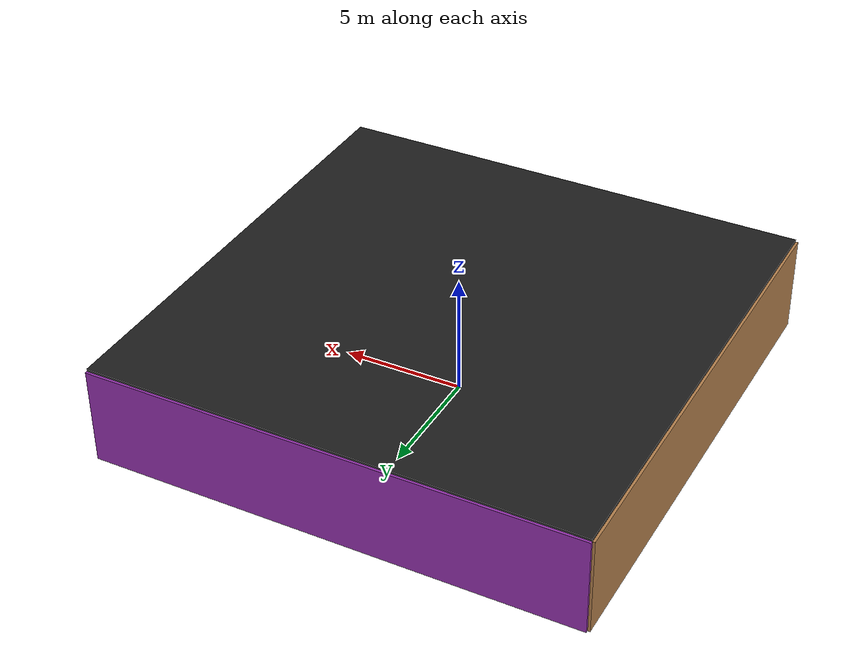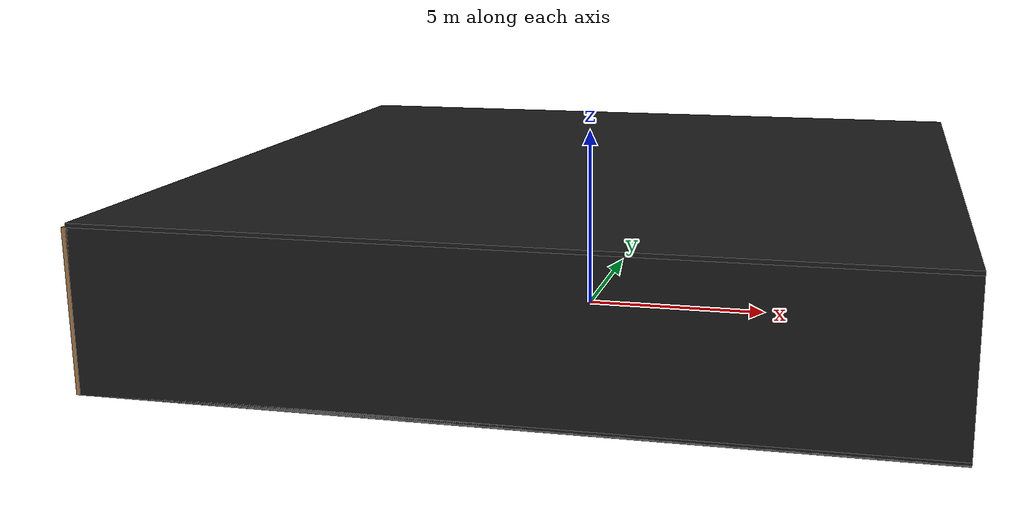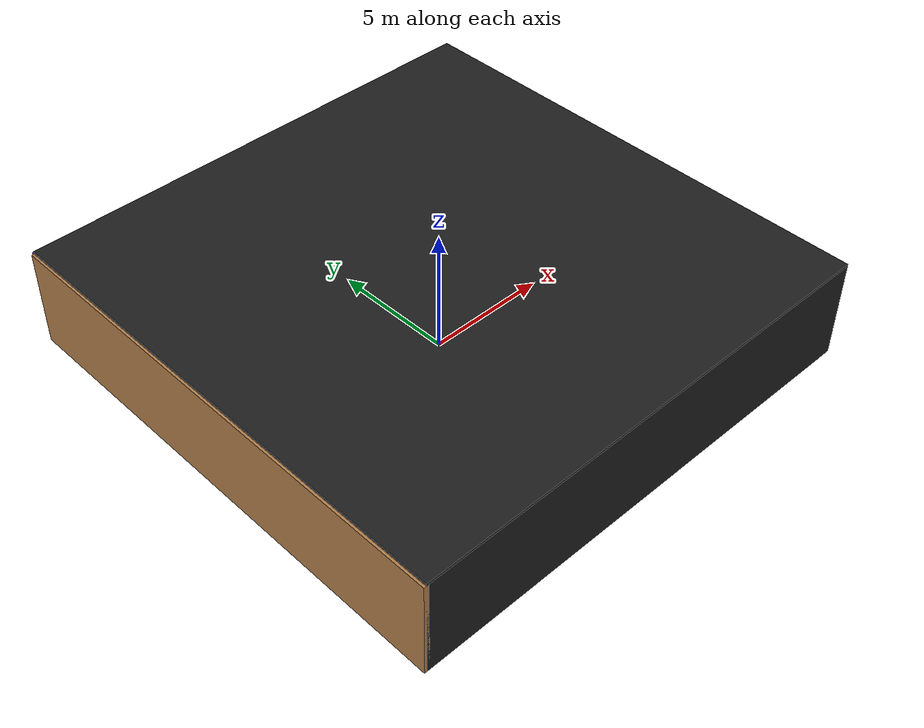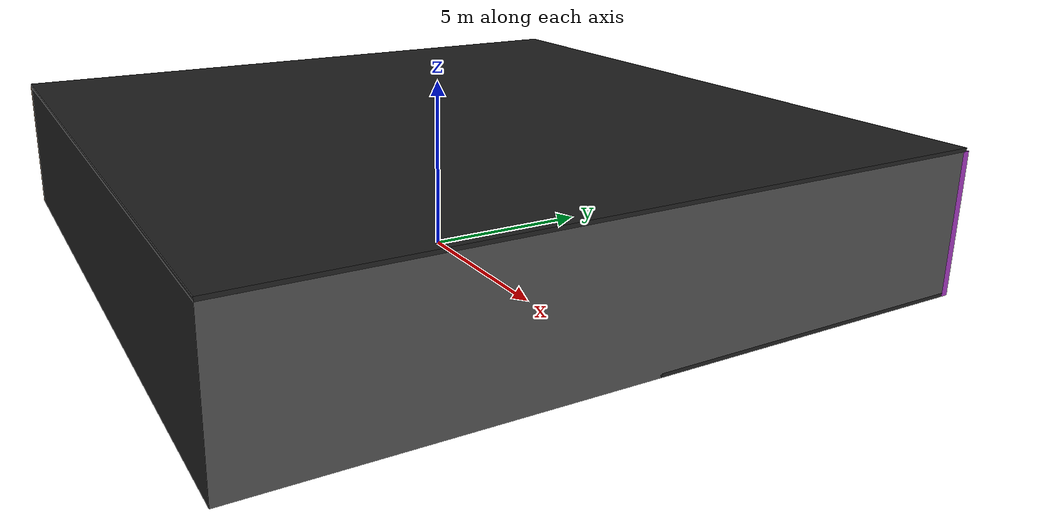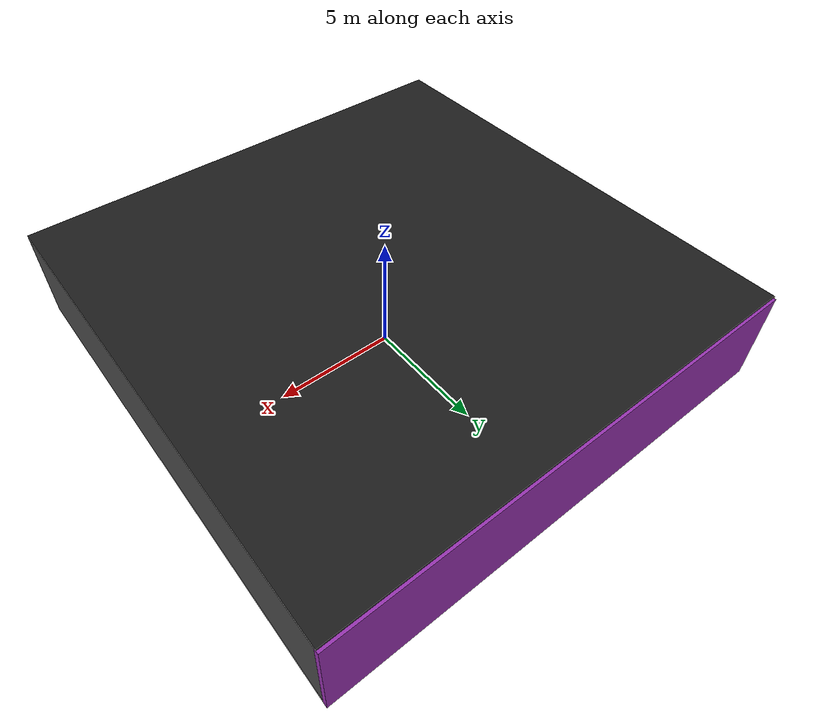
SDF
<sdf version="1.4">
 <world name="default">
  <physics type="ode">
   <max_step_size>0.001</max_step_size>
   <real_time_factor>1</real_time_factor>
   <real_time_update_rate>1000</real_time_update_rate>
   <gravity>0 0 -9.8</gravity>
  </physics>
  <scene><ambient>0.4 0.4 0.4 1</ambient><background>0.7 0.7 0.7 1</background><shadows>1</shadows></scene>
  <model name="Surrounding">
   <static>1</static>
   <link name="Ceiling">
    <collision name="Ceiling_Collision"><geometry><box><size>20 20 0.1</size></box></geometry></collision>
    <visual name="Ceiling_Visual">
     <geometry><box><size>20 20 0.1</size></box></geometry>
     <material>
      <script><uri>file://media/materials/scripts/gazebo.material</uri><name>Gazebo/FlatBlack</name></script>
     </material>
    </visual>
    <pose>0 0 4.05 0 0 0</pose>
   </link>
   <link name="Wall_South">
    <collision name="Wall_South_Collision">
     <geometry><box><size>20 0 4</size></box></geometry>
     <pose>0 0 2 0 -0 0</pose>
    </collision>
    <visual name="Wall_South_Visual">
     <pose>0 0 2 0 -0 0</pose>
     <geometry><box><size>20 0 4</size></box></geometry>
     <material>
      <script><uri>file://media/materials/scripts/gazebo.material</uri><name>Gazebo/FlatBlack</name></script>
     </material>
    </visual>
    <velocity_decay><linear>0</linear><angular>0</angular></velocity_decay>
    <pose>0 -10 0 0 -0 0</pose>
   </link>
   <link name="Wall_East">
    <collision name="Wall_21_Collision">
     <geometry><box><size>20 0 4</size></box></geometry>
     <pose>0 0 2 0 -0 0</pose>
    </collision>
    <visual name="Wall_21_Visual">
     <pose>0 0 2 0 -0 0</pose>
     <geometry><box><size>20 0 4</size></box></geometry>
     <material>
      <script><uri>file://media/materials/scripts/gazebo.material</uri><name>Gazebo/Road</name></script>
     </material>
    </visual>
    <velocity_decay><linear>0</linear><angular>0</angular></velocity_decay>
    <pose>10 0 0 0 -0 1.5708</pose>
   </link>
   <link name="Wall_North">
    <collision name="Wall_22_Collision">
     <geometry><box><size>20 0.2 4</size></box></geometry>
     <pose>0 0 2 0 -0 0</pose>
    </collision>
    <visual name="Wall_22_Visual">
     <pose>0 0 2 0 -0 0</pose>
     <geometry><box><size>20 0.2 4</size></box></geometry>
     <material>
      <script><uri>file://media/materials/scripts/gazebo.material</uri><name>Gazebo/PurpleGlow</name></script>
     </material>
    </visual>
    <velocity_decay><linear>0</linear><angular>0</angular></velocity_decay>
    <pose>0 10 0 0 -0 0</pose>
   </link>
   <link name="Wall_West">
    <collision name="Wall_23_Collision">
     <geometry><box><size>20 0.2 4</size></box></geometry>
     <pose>0 0 2 0 -0 0</pose>
    </collision>
    <visual name="Wall_23_Visual">
     <pose>0 0 2 0 -0 0</pose>
     <geometry><box><size>20 0.2 4</size></box></geometry>
     <material>
      <script><uri>file://media/materials/scripts/gazebo.material</uri><name>Gazebo/WoodFloor</name></script>
     </material>
    </visual>
    <velocity_decay><linear>0</linear><angular>0</angular></velocity_decay>
    <pose>-10 0 0 0 0 -1.5708</pose>
   </link>
   <link name="Ground_link">
    <collision name="collision">
     <pose>0 0 .05 0 -0 0</pose>
     <geometry><box><size>20 20 0.1</size></box></geometry>
    </collision>
    <visual name="visual">
     <pose>0 0 .05 0 -0 0</pose>
     <geometry><box><size>20 20 0.1</size></box></geometry>
     <material>
      <script><uri>file://media/materials/scripts/gazebo.material</uri><name>Gazebo/Black</name></script>
     </material>
    </visual>
   </link>
   <static>1</static>
  </model>
  <spherical_coordinates>
   <surface_model>EARTH_WGS84</surface_model>
   <latitude_deg>0</latitude_deg>
   <longitude_deg>0</longitude_deg>
   <elevation>0</elevation>
   <heading_deg>0</heading_deg>
  </spherical_coordinates>
  <light name="lightball_0" type="diffuse">
   <diffuse>0.8 0.8 0.8 1</diffuse>
   <specular>0.2 0.2 0.2 1</specular>
   <attenuation>
    <range>100</range>
    <constant>0.7</constant>
    <linear>0.01</linear>
    <quadratic>0.001</quadratic>
   </attenuation>
   <direction>-0.5 0.1 -0.9</direction>
   <pose>-3.62808116212 -3.53666229984 0.951647781151 0 0 0</pose>
  </light>
  <light name="lightball_1" type="diffuse">
   <diffuse>0.8 0.8 0.8 1</diffuse>
   <specular>0.2 0.2 0.2 1</specular>
   <attenuation>
    <range>100</range>
    <constant>0.7</constant>
    <linear>0.01</linear>
    <quadratic>0.001</quadratic>
   </attenuation>
   <direction>-0.5 0.1 -0.9</direction>
   <pose>5.222559061 -0.076448337777 1.03544122757 0 0 0</pose>
  </light>
  <light name="lightball_2" type="diffuse">
   <diffuse>0.8 0.8 0.8 1</diffuse>
   <specular>0.2 0.2 0.2 1</specular>
   <attenuation>
    <range>100</range>
    <constant>0.7</constant>
    <linear>0.01</linear>
    <quadratic>0.001</quadratic>
   </attenuation>
   <direction>-0.5 0.1 -0.9</direction>
   <pose>-3.17009077184 -0.651743309804 3.25563742441 0 0 0</pose>
  </light>
  <light name="lightball_3" type="diffuse">
   <diffuse>0.8 0.8 0.8 1</diffuse>
   <specular>0.2 0.2 0.2 1</specular>
   <attenuation>
    <range>100</range>
    <constant>0.7</constant>
    <linear>0.01</linear>
    <quadratic>0.001</quadratic>
   </attenuation>
   <direction>-0.5 0.1 -0.9</direction>
   <pose>8.41438672572 2.33355876236 2.61658573483 0 0 0</pose>
  </light>
  <light name="lightball_4" type="diffuse">
   <diffuse>0.8 0.8 0.8 1</diffuse>
   <specular>0.2 0.2 0.2 1</specular>
   <attenuation>
    <range>100</range>
    <constant>0.7</constant>
    <linear>0.01</linear>
    <quadratic>0.001</quadratic>
   </attenuation>
   <direction>-0.5 0.1 -0.9</direction>
   <pose>5.55271891409 9.55915220512 2.66295968486 0 0 0</pose>
  </light>
  <light name="lightball_5" type="diffuse">
   <diffuse>0.8 0.8 0.8 1</diffuse>
   <specular>0.2 0.2 0.2 1</specular>
   <attenuation>
    <range>100</range>
    <constant>0.7</constant>
    <linear>0.01</linear>
    <quadratic>0.001</quadratic>
   </attenuation>
   <direction>-0.5 0.1 -0.9</direction>
   <pose>8.27330476524 8.59607177668 2.01276427387 0 0 0</pose>
  </light>
  <include><uri>model://cabinet</uri><pose>-7.4910167281 5.11169428027 0 0 0 3.12497656282</pose></include>
  <include><uri>model://table</uri><pose>-4.32018304311 -6.95711610133 0 0 0 1.04450347714</pose></include>
  <include>
   <uri>model://construction_cone</uri>
   <pose>-4.1055001492 -1.93767496081 0 0 0 1.90057632081</pose>
  </include>
  <include>
   <uri>model://robocup_3Dsim_goal</uri>
   <pose>-4.74964087994 1.88260972812 0 0 0 1.99942089281</pose>
  </include>
  <include>
   <uri>model://construction_cone</uri>
   <pose>-1.48559063353 8.25582449876 0 0 0 2.5160544553</pose>
  </include>
  <include><uri>model://table</uri><pose>1.24445986545 -4.22809606298 0 0 0 2.37736155198</pose></include>
  <include>
   <uri>model://robocup_3Dsim_goal</uri>
   <pose>1.37971730155 7.1006946631 0 0 0 2.52993298148</pose>
  </include>
  <include>
   <uri>model://robocup_3Dsim_goal</uri>
   <pose>7.55835052336 1.58294907043 0 0 0 2.13042817633</pose>
  </include>
 </world>
</sdf>

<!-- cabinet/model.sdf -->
<sdf version="1.5">
  <model name="cabinet">
    <static>true</static>
    <link name="cabinet_bottom_plate">
      <inertial>
        <pose>0 0 -1 0 0 0</pose>
        <inertia>
          <ixx>2.050000</ixx>
          <ixy>0</ixy>
          <ixz>0</ixz>
          <iyy>2.050000</iyy>
          <iyz>0</iyz>
          <izz>2.050000</izz>
        </inertia>
        <mass>25.000000</mass>
      </inertial>
      <collision name="cabinet_bottom_plate_geom">
        <pose>0 0 0.010000 0 0 0</pose>
        <geometry>
          <box>
            <size>0.450000 0.450000 0.020000</size>
          </box>
        </geometry>
      </collision>
      <visual name="cabinet_bottom_plate_geom_visual">
        <pose>0 0 0.010000 0 0 0</pose>
        <geometry>
          <box>
            <size>0.450000 0.450000 0.020000</size>
          </box>
        </geometry>
        <material>
          <script>
            <uri>model://media/materials/scripts/gazebo.material</uri>
            <name>Gazebo/Wood</name>
          </script>
        </material>
      </visual>
      <collision name="cabinet_bottom_plate_geom_cabinet_back_plate">
        <pose>0.235000 0 0.510000 0 0 0</pose>
        <geometry>
          <box>
            <size>0.020000 0.450000 1.020000</size>
          </box>
        </geometry>
      </collision>
      <visual name="cabinet_bottom_plate_geom_cabinet_back_plate_visual">
        <pose>0.235000 0 0.510000 0 0 0</pose>
        <geometry>
          <box>
            <size>0.020000 0.450000 1.020000</size>
          </box>
        </geometry>
        <material>
          <script>
            <uri>model://media/materials/scripts/gazebo.material</uri>
            <name>Gazebo/Wood</name>
          </script>
        </material>
      </visual>
      <collision name="cabinet_bottom_plate_geom_cabinet_left_plate">
        <pose>0 0.235000 0.510000 0 0 0</pose>
        <geometry>
          <box>
            <size>0.450000 0.020000 1.020000</size>
          </box>
        </geometry>
      </collision>
      <visual name="cabinet_bottom_plate_geom_cabinet_left_plate_visual">
        <pose>0 0.235000 0.510000 0 0 0</pose>
        <geometry>
          <box>
            <size>0.450000 0.020000 1.020000</size>
          </box>
        </geometry>
        <material>
          <script>
            <uri>model://media/materials/scripts/gazebo.material</uri>
            <name>Gazebo/Wood</name>
          </script>
        </material>
      </visual>
      <collision name="cabinet_bottom_plate_geom_cabinet_middle_plate">
        <pose>0 0 0.510000 0 0 0</pose>
        <geometry>
          <box>
            <size>0.450000 0.450000 0.020000</size>
          </box>
        </geometry>
      </collision>
      <visual name="cabinet_bottom_plate_geom_cabinet_middle_plate_visual">
        <pose>0 0 0.510000 0 0 0</pose>
        <geometry>
          <box>
            <size>0.450000 0.450000 0.020000</size>
          </box>
        </geometry>
        <material>
          <script>
            <uri>model://media/materials/scripts/gazebo.material</uri>
            <name>Gazebo/Wood</name>
          </script>
        </material>
      </visual>
      <collision name="cabinet_bottom_plate_geom_cabinet_right_plate">
        <pose>0 -0.235000 0.510000 0 0 0</pose>
        <geometry>
          <box>
            <size>0.450000 0.020000 1.020000</size>
          </box>
        </geometry>
      </collision>
      <visual name="cabinet_bottom_plate_geom_cabinet_right_plate_visual">
        <pose>0 -0.235000 0.510000 0 0 0</pose>
        <geometry>
          <box>
            <size>0.450000 0.020000 1.020000</size>
          </box>
        </geometry>
        <material>
          <script>
            <uri>model://media/materials/scripts/gazebo.material</uri>
            <name>Gazebo/Wood</name>
          </script>
        </material>
      </visual>
      <collision name="cabinet_bottom_plate_geom_cabinet_top_plate">
        <pose>0 0 1.010000 0 0 0</pose>
        <geometry>
          <box>
            <size>0.450000 0.450000 0.020000</size>
          </box>
        </geometry>
      </collision>
      <visual name="cabinet_bottom_plate_geom_cabinet_top_plate_visual">
        <pose>0 0 1.010000 0 0 0</pose>
        <geometry>
          <box>
            <size>0.450000 0.450000 0.020000</size>
          </box>
        </geometry>
        <material>
          <script>
            <uri>model://media/materials/scripts/gazebo.material</uri>
            <name>Gazebo/Wood</name>
          </script>
        </material>
      </visual>
    </link>
  </model>
</sdf>

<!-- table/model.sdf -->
<sdf version="1.5">
  <model name="table">
    <static>true</static>
    <link name="link">
      <collision name="surface">
        <pose>0 0 1.0 0 0 0</pose>
        <geometry>
          <box>
            <size>1.5 0.8 0.03</size>
          </box>
        </geometry>
        <surface>
          <friction>
            <ode>
              <mu>0.6</mu>
              <mu2>0.6</mu2>
            </ode>
          </friction>
        </surface>
      </collision>
      <visual name="visual1">
        <pose>0 0 1.0 0 0 0</pose>
        <geometry>
          <box>
            <size>1.5 0.8 0.03</size>
          </box>
        </geometry>
        <material>
          <script>
            <uri>model://media/materials/scripts/gazebo.material</uri>
            <name>Gazebo/Wood</name>
          </script>
        </material>
      </visual>
      <collision name="front_left_leg">
        <pose>0.68 0.38 0.5 0 0 0</pose>
        <geometry>
          <cylinder>
            <radius>0.02</radius>
            <length>1.0</length>
          </cylinder>
        </geometry>
      </collision>
      <visual name="front_left_leg">
        <pose>0.68 0.38 0.5 0 0 0</pose>
        <geometry>
          <cylinder>
            <radius>0.02</radius>
            <length>1.0</length>
          </cylinder>
        </geometry>
        <material>
          <script>
            <uri>model://media/materials/scripts/gazebo.material</uri>
            <name>Gazebo/Grey</name>
          </script>
        </material>
      </visual>
      <collision name="front_right_leg">
        <pose>0.68 -0.38 0.5 0 0 0</pose>
        <geometry>
          <cylinder>
            <radius>0.02</radius>
            <length>1.0</length>
          </cylinder>
        </geometry>
      </collision>
      <visual name="front_right_leg">
        <pose>0.68 -0.38 0.5 0 0 0</pose>
        <geometry>
          <cylinder>
            <radius>0.02</radius>
            <length>1.0</length>
          </cylinder>
        </geometry>
        <material>
          <script>
            <uri>model://media/materials/scripts/gazebo.material</uri>
            <name>Gazebo/Grey</name>
          </script>
        </material>
      </visual>
      <collision name="back_right_leg">
        <pose>-0.68 -0.38 0.5 0 0 0</pose>
        <geometry>
          <cylinder>
            <radius>0.02</radius>
            <length>1.0</length>
          </cylinder>
        </geometry>
      </collision>
      <visual name="back_right_leg">
        <pose>-0.68 -0.38 0.5 0 0 0</pose>
        <geometry>
          <cylinder>
            <radius>0.02</radius>
            <length>1.0</length>
          </cylinder>
        </geometry>
        <material>
          <script>
            <uri>model://media/materials/scripts/gazebo.material</uri>
            <name>Gazebo/Grey</name>
          </script>
        </material>
      </visual>
      <collision name="back_left_leg">
        <pose>-0.68 0.38 0.5 0 0 0</pose>
        <geometry>
          <cylinder>
            <radius>0.02</radius>
            <length>1.0</length>
          </cylinder>
        </geometry>
      </collision>
      <visual name="back_left_leg">
        <pose>-0.68 0.38 0.5 0 0 0</pose>
        <geometry>
          <cylinder>
            <radius>0.02</radius>
            <length>1.0</length>
          </cylinder>
        </geometry>
        <material>
          <script>
            <uri>model://media/materials/scripts/gazebo.material</uri>
            <name>Gazebo/Grey</name>
          </script>
        </material>
      </visual>
    </link>
  </model>
</sdf>

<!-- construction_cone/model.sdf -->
<sdf version="1.5">
  <model name="Construction Cone">
    <link name="link">
      <collision name="collision">
        <geometry>
          <mesh>
            <scale>10 10 10</scale>
            <uri>file://isr-testbed/construction_cone/meshes/construction_cone.dae</uri>
          </mesh>
        </geometry>
      </collision>
      <visual name="visual">
        <geometry>
          <mesh>
            <scale>10 10 10</scale>
            <uri>file://isr-testbed/construction_cone/meshes/construction_cone.dae</uri>
          </mesh>
        </geometry>
      </visual>
    </link>
  </model>
</sdf>

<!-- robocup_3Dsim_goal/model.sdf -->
<sdf version="1.5">
  <model name="robocup_3d_goal">
    <static>true</static>
    <link name="left_post">
      <pose>0 1.05 0.45 0 0 0</pose>
      <collision name="collision">
        <geometry>
          <cylinder>
            <radius>0.05</radius>
            <length>0.9</length>
          </cylinder>
        </geometry>
      </collision>
      <visual name="visual">
        <geometry>
          <cylinder>
            <radius>0.05</radius>
            <length>0.9</length>
          </cylinder>
        </geometry>
        <material>
          <script>
            <uri>file://media/materials/scripts/gazebo.material</uri>
            <name>Gazebo/ZincYellow</name>
          </script>
        </material>
      </visual>
    </link>
    <link name="left_support_horiz_lower">
      <pose>0.30 1.05 0.01 0 0 0</pose>
      <collision name="collision">
        <geometry>
          <box>
            <size>0.50 0.02 0.02</size>
          </box>
        </geometry>
      </collision>
      <visual name="visual">
        <geometry>
          <box>
            <size>0.50 0.02 0.02</size>
          </box>
        </geometry>
        <material>
          <script>
            <uri>file://media/materials/scripts/gazebo.material</uri>
            <name>Gazebo/White</name>
          </script>
        </material>
      </visual>
    </link>
    <link name="left_support_horiz_upper">
      <pose>0.30 1.05 0.79 0 0 0</pose>
      <collision name="collision">
        <geometry>
          <box>
            <size>0.50 0.02 0.02</size>
          </box>
        </geometry>
      </collision>
      <visual name="visual">
        <geometry>
          <box>
            <size>0.50 0.02 0.02</size>
          </box>
        </geometry>
        <material>
          <script>
            <uri>file://media/materials/scripts/gazebo.material</uri>
            <name>Gazebo/White</name>
          </script>
        </material>
      </visual>
    </link>
    <link name="left_support_vertical">
      <pose>0.56 1.05 0.4 0 1.5708 0</pose>
      <collision name="collision">
        <geometry>
          <box>
            <size>0.80 0.02 0.02</size>
          </box>
        </geometry>
      </collision>
      <visual name="visual">
        <geometry>
          <box>
            <size>0.80 0.02 0.02</size>
          </box>
        </geometry>
        <material>
          <script>
            <uri>file://media/materials/scripts/gazebo.material</uri>
            <name>Gazebo/White</name>
          </script>
        </material>
      </visual>
    </link>
    <link name="right_support_horiz_lower">
      <pose>0.30 -1.05 0.01 0 0 0</pose>
      <collision name="collision">
        <geometry>
          <box>
            <size>0.50 0.02 0.02</size>
          </box>
        </geometry>
      </collision>
      <visual name="visual">
        <geometry>
          <box>
            <size>0.50 0.02 0.02</size>
          </box>
        </geometry>
        <material>
          <script>
            <uri>file://media/materials/scripts/gazebo.material</uri>
            <name>Gazebo/White</name>
          </script>
        </material>
      </visual>
    </link>
    <link name="right_support_horiz_upper">
      <pose>0.30 -1.05 0.79 0 0 0</pose>
      <collision name="collision">
        <geometry>
          <box>
            <size>0.50 0.02 0.02</size>
          </box>
        </geometry>
      </collision>
      <visual name="visual">
        <geometry>
          <box>
            <size>0.50 0.02 0.02</size>
          </box>
        </geometry>
        <material>
          <script>
            <uri>file://media/materials/scripts/gazebo.material</uri>
            <name>Gazebo/White</name>
          </script>
        </material>
      </visual>
    </link>
    <link name="right_support_vertical">
      <pose>0.56 -1.05 0.4 0 1.5708 0</pose>
      <collision name="collision">
        <geometry>
          <box>
            <size>0.80 0.02 0.02</size>
          </box>
        </geometry>
      </collision>
      <visual name="visual">
        <geometry>
          <box>
            <size>0.80 0.02 0.02</size>
          </box>
        </geometry>
        <material>
          <script>
            <uri>file://media/materials/scripts/gazebo.material</uri>
            <name>Gazebo/White</name>
          </script>
        </material>
      </visual>
    </link>
    <link name="center_support_horiz_lower">
      <pose>0.56 0 0.01 0 1.5708 0</pose>
      <collision name="collision">
        <geometry>
          <box>
            <size>0.02 2.08 0.02</size>
          </box>
        </geometry>
      </collision>
      <visual name="visual">
        <geometry>
          <box>
            <size>0.02 2.08 0.02</size>
          </box>
        </geometry>
        <material>
          <script>
            <uri>file://media/materials/scripts/gazebo.material</uri>
            <name>Gazebo/White</name>
          </script>
        </material>
      </visual>
    </link>
    <link name="center_support_horiz_upper">
      <pose>0.56 0 0.79 0 1.5708 0</pose>
      <collision name="collision">
        <geometry>
          <box>
            <size>0.02 2.08 0.02</size>
          </box>
        </geometry>
      </collision>
      <visual name="visual">
        <geometry>
          <box>
            <size>0.02 2.08 0.02</size>
          </box>
        </geometry>
        <material>
          <script>
            <uri>file://media/materials/scripts/gazebo.material</uri>
            <name>Gazebo/White</name>
          </script>
        </material>
      </visual>
    </link>
    <link name="right_post">
      <pose>0 -1.05 0.45 0 0 0</pose>
      <collision name="collision">
        <geometry>
          <cylinder>
            <radius>0.05</radius>
            <length>0.9</length>
          </cylinder>
        </geometry>
      </collision>
      <visual name="visual">
        <geometry>
          <cylinder>
            <radius>0.05</radius>
            <length>0.9</length>
          </cylinder>
        </geometry>
        <material>
          <script>
            <uri>file://media/materials/scripts/gazebo.material</uri>
            <name>Gazebo/ZincYellow</name>
          </script>
        </material>
      </visual>
    </link>
    <link name="crossbar">
      <pose>0 0 0.85 1.57 1.57 0</pose>
      <collision name="collision">
        <geometry>
          <cylinder>
            <radius>0.05</radius>
            <length>2.0</length>
          </cylinder>
        </geometry>
      </collision>
      <visual name="visual">
        <geometry>
          <cylinder>
            <radius>0.05</radius>
            <length>2.0</length>
          </cylinder>
        </geometry>
        <material>
          <script>
            <uri>file://media/materials/scripts/gazebo.material</uri>
            <name>Gazebo/ZincYellow</name>
          </script>
        </material>
      </visual>
    </link>
    <link name="center_net">
      <pose>0.56 0 0.40 0 0 0</pose>
      <collision name="collision">
        <geometry>
          <box>
            <size>0.01 2.1 0.80</size>
          </box>
        </geometry>
      </collision>
      <visual name="visual">
        <geometry>
          <box>
            <size>0.01 2.1 0.80</size>
          </box>
        </geometry>
        <material>
          <script>
            <uri>model://../model_source/models/robocup09_spl_field/materials/scripts/</uri>
            <uri>model://../model_source/models/robocup09_spl_field/materials/textures/</uri>
            <name>RoboCup/Net</name>
          </script>
        </material>
      </visual>
    </link>
    <link name="left_net">
      <pose>0.30 1.05 0.40 0 0 0</pose>
      <collision name="collision">
        <geometry>
          <box>
            <size>0.50 0.01 0.76</size>
          </box>
        </geometry>
      </collision>
      <visual name="visual">
        <geometry>
          <box>
            <size>0.50 0.01 0.76</size>
          </box>
        </geometry>
        <material>
          <script>
            <uri>model://../model_source/models/robocup09_spl_field/materials/scripts/</uri>
            <uri>model://../model_source/models/robocup09_spl_field/materials/textures/</uri>
            <name>RoboCup/Net</name>
          </script>
        </material>
      </visual>
    </link>
    <link name="right_net">
      <pose>0.30 -1.05 0.40 0 0 0</pose>
      <collision name="collision">
        <geometry>
          <box>
            <size>0.50 0.01 0.76</size>
          </box>
        </geometry>
      </collision>
      <visual name="visual">
        <geometry>
          <box>
            <size>0.50 0.01 0.76</size>
          </box>
        </geometry>
        <material>
          <script>
            <uri>model://../model_source/models/robocup09_spl_field/materials/scripts/</uri>
            <uri>model://../model_source/models/robocup09_spl_field/materials/textures/</uri>
            <name>RoboCup/Net</name>
          </script>
        </material>
      </visual>
    </link>
  </model>
</sdf>
